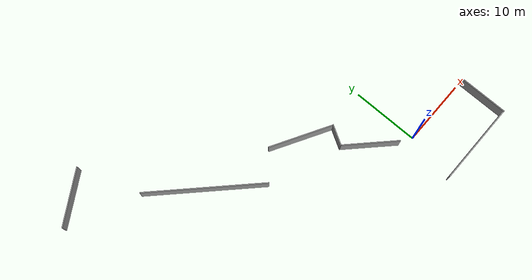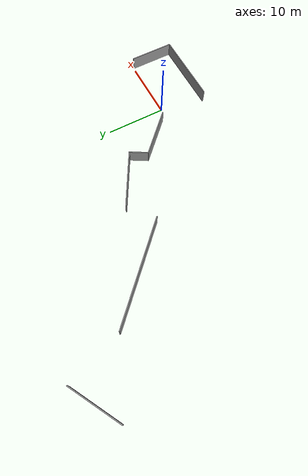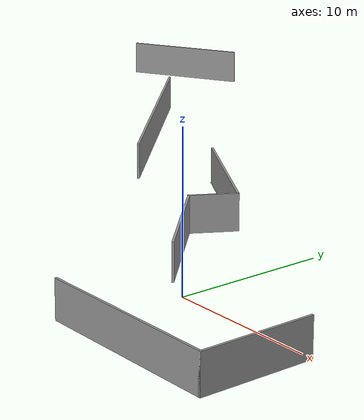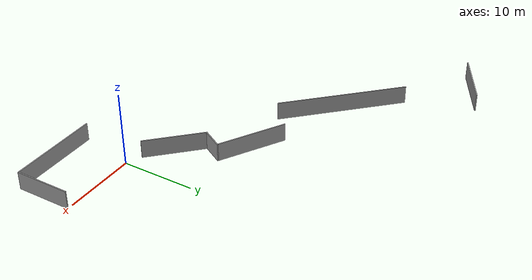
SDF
<sdf version="1.7">
 <world name="default">
  <scene>
   <ambient>0.95 0.95 0.95 1</ambient>
   <background>0.3 0.3 0.3 1</background>
   <shadows>1</shadows>
   <sky><clouds><speed>3</speed></clouds></sky>
  </scene>
  <light name="sun" type="directional">
   <pose>0 0 10 0 -0 0</pose>
   <diffuse>0.8 0.8 0.8 1</diffuse>
   <specular>0.2 0.2 0.2 1</specular>
   <attenuation>
    <range>1000</range>
    <constant>0.9</constant>
    <linear>0.01</linear>
    <quadratic>0.001</quadratic>
   </attenuation>
   <direction>-0.5 0.1 -0.9</direction>
   <spot><inner_angle>0</inner_angle><outer_angle>0</outer_angle><falloff>0</falloff></spot>
  </light>
  <spherical_coordinates>
   <surface_model>EARTH_WGS84</surface_model>
   <latitude_deg>38.161479</latitude_deg>
   <longitude_deg>-122.454630</longitude_deg>
   <elevation>488</elevation>
   <heading_deg>180</heading_deg>
  </spherical_coordinates>
  <physics type="ode">
   <real_time_update_rate>100</real_time_update_rate>
   <max_step_size>0.01</max_step_size>
   <real_time_factor>1</real_time_factor>
   <ode>
    <solver>
     <type>quick</type>
     <iters>150</iters>
     <precon_iters>0</precon_iters>
     <sor>1.4</sor>
     <use_dynamic_moi_rescaling>1</use_dynamic_moi_rescaling>
    </solver>
    <constraints>
     <cfm>1e-05</cfm>
     <erp>0.2</erp>
     <contact_max_correcting_vel>2000</contact_max_correcting_vel>
     <contact_surface_layer>0.01</contact_surface_layer>
    </constraints>
   </ode>
  </physics>
  <gravity>0 0 -9.8</gravity>
  <magnetic_field>6e-06 2.3e-05 -4.2e-05</magnetic_field>
  <atmosphere type="adiabatic"/>
  <audio><device>default</device></audio>
  <model name="path">
   <pose>-15.5748 12.7093 0 0 -0 0</pose>
   <link name="Wall_10">
    <collision name="Wall_10_Collision">
     <geometry><box><size>3.25 0.15 2.5</size></box></geometry>
     <pose>0 0 1.25 0 -0 0</pose>
    </collision>
    <visual name="Wall_10_Visual">
     <pose>0 0 1.25 0 -0 0</pose>
     <geometry><box><size>3.25 0.15 2.5</size></box></geometry>
     <material>
      <script><uri>file://media/materials/scripts/gazebo.material</uri><name>Gazebo/Grey</name></script>
      <ambient>1 1 1 1</ambient>
     </material>
     <meta><layer>0</layer></meta>
    </visual>
    <pose>8.2922 -4.4565 0 0 -0 1.0472</pose>
   </link>
   <link name="Wall_11">
    <collision name="Wall_11_Collision">
     <geometry><box><size>9.75 0.15 2.5</size></box></geometry>
     <pose>0 0 1.25 0 -0 0</pose>
    </collision>
    <visual name="Wall_11_Visual">
     <pose>0 0 1.25 0 -0 0</pose>
     <geometry><box><size>9.75 0.15 2.5</size></box></geometry>
     <material>
      <script><uri>file://media/materials/scripts/gazebo.material</uri><name>Gazebo/Grey</name></script>
      <ambient>1 1 1 1</ambient>
     </material>
     <meta><layer>0</layer></meta>
    </visual>
    <pose>4.91027 -0.714156 0 0 -0 2.61799</pose>
   </link>
   <link name="Wall_17">
    <collision name="Wall_17_Collision">
     <geometry><box><size>18 0.15 2.5</size></box></geometry>
     <pose>0 0 1.25 0 -0 0</pose>
    </collision>
    <visual name="Wall_17_Visual">
     <pose>0 0 1.25 0 -0 0</pose>
     <geometry><box><size>18 0.15 2.5</size></box></geometry>
     <material>
      <script><uri>file://media/materials/scripts/gazebo.material</uri><name>Gazebo/Grey</name></script>
      <ambient>1 1 1 1</ambient>
     </material>
     <meta><layer>0</layer></meta>
    </visual>
    <pose>-9.45679 4.68973 0 0 -0 -0.785398</pose>
   </link>
   <link name="Wall_19">
    <collision name="Wall_19_Collision">
     <geometry><box><size>8.75 0.15 2.5</size></box></geometry>
     <pose>0 0 1.25 0 -0 0</pose>
    </collision>
    <visual name="Wall_19_Visual">
     <pose>0 0 1.25 0 -0 0</pose>
     <geometry><box><size>8.75 0.15 2.5</size></box></geometry>
     <material>
      <script><uri>file://media/materials/scripts/gazebo.material</uri><name>Gazebo/Grey</name></script>
      <ambient>1 1 1 1</ambient>
     </material>
     <meta><layer>0</layer></meta>
    </visual>
    <pose>-22.5753 17.9895 0 0 -0 0.523599</pose>
   </link>
   <link name="Wall_22">
    <collision name="Wall_22_Collision">
     <geometry><box><size>12.5 0.15 2.5</size></box></geometry>
     <pose>0 0 1.25 0 -0 0</pose>
    </collision>
    <visual name="Wall_22_Visual">
     <pose>0 0 1.25 0 -0 0</pose>
     <geometry><box><size>12.5 0.15 2.5</size></box></geometry>
     <material>
      <script><uri>file://media/materials/scripts/gazebo.material</uri><name>Gazebo/Grey</name></script>
      <ambient>1 1 1 1</ambient>
     </material>
     <meta><layer>0</layer></meta>
    </visual>
    <pose>20.1517 -20.1669 0 0 -0 0</pose>
   </link>
   <link name="Wall_23">
    <collision name="Wall_23_Collision">
     <geometry><box><size>7.5 0.15 2.5</size></box></geometry>
     <pose>0 0 1.25 0 -0 0</pose>
    </collision>
    <visual name="Wall_23_Visual">
     <pose>0 0 1.25 0 -0 0</pose>
     <geometry><box><size>7.5 0.15 2.5</size></box></geometry>
     <material>
      <script><uri>file://media/materials/scripts/gazebo.material</uri><name>Gazebo/Grey</name></script>
      <ambient>1 1 1 1</ambient>
     </material>
     <meta><layer>0</layer></meta>
    </visual>
    <pose>26.3267 -16.4919 0 0 -0 1.5708</pose>
   </link>
   <link name="Wall_9">
    <collision name="Wall_9_Collision">
     <geometry><box><size>8.5 0.15 2.5</size></box></geometry>
     <pose>0 0 1.25 0 -0 0</pose>
    </collision>
    <visual name="Wall_9_Visual">
     <pose>0 0 1.25 0 -0 0</pose>
     <geometry><box><size>8.5 0.15 2.5</size></box></geometry>
     <material>
      <script><uri>file://media/materials/scripts/gazebo.material</uri><name>Gazebo/Grey</name></script>
      <ambient>1 1 1 1</ambient>
     </material>
     <meta><layer>0</layer></meta>
    </visual>
    <pose>10.4694 -8.75101 0 0 -0 2.35619</pose>
   </link>
   <static>1</static>
  </model>
 </world>
</sdf>
